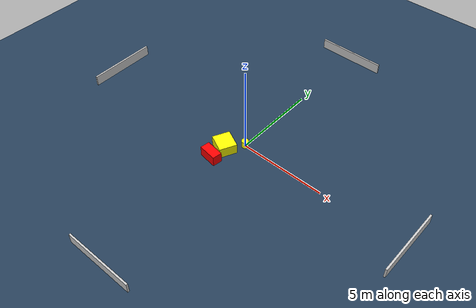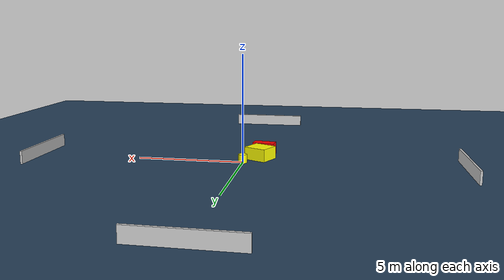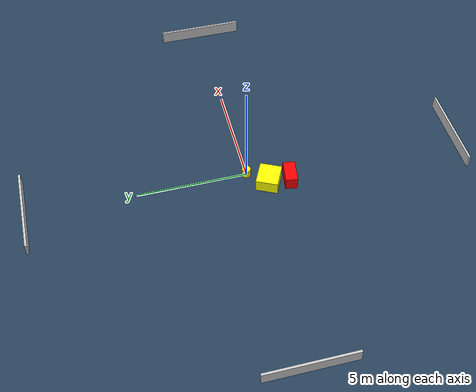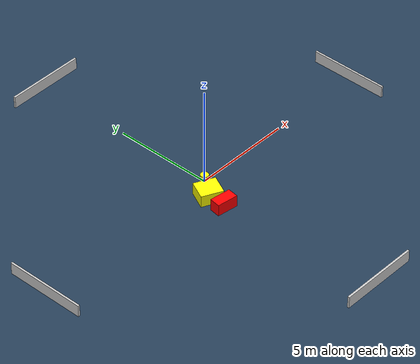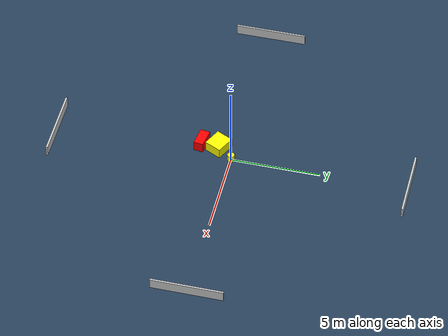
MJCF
<?xml version="1.0" ?>
<mujoco model="generated_environment">
  <option timestep="0.01" integrator="RK4" cone="elliptic"/>
  <default>
    <geom density="1"/>
  </default>
  <asset>
    <texture builtin="gradient" height="3072" name="skybox" rgb1="0.3 0.5 0.7" rgb2="0 0 0" type="skybox" width="512"/>
    <texture builtin="checker" height="300" name="groundplane" rgb1="0.2 0.3 0.4" rgb2="0.1 0.2 0.3" type="2d" width="300"/>
    <material name="groundplane" reflectance="0.2" texrepeat="5 5" texture="groundplane"/>
  </asset>
  <worldbody>
    <light dir="0 0 -1" directional="true" pos="0 0 1.5"/>
    <geom condim="3" friction="0.5 0.005 0.001" material="groundplane" name="floor" pos="0 0 0" size="0 0 0.05" type="plane"/>
    <body name="walls">
      <geom name="wall_1" condim="4" pos="-10.0 0.0 0.3" rgba="0.800000011920929 0.800000011920929 0.800000011920929 1.0" size="0.05 2.0 0.3" type="box"/>
      <geom name="wall_2" condim="4" pos="10.0 0.0 0.3" rgba="0.800000011920929 0.800000011920929 0.800000011920929 1.0" size="0.05 2.0 0.3" type="box"/>
      <geom name="wall_3" condim="4" pos="0.0 -10.0 0.3" rgba="0.800000011920929 0.800000011920929 0.800000011920929 1.0" size="2.0 0.05 0.3" type="box"/>
      <geom name="wall_4" condim="4" pos="0.0 10.0 0.3" rgba="0.800000011920929 0.800000011920929 0.800000011920929 1.0" size="2.0 0.05 0.3" type="box"/>
    </body>
    <body name="robot">
      <joint name="joint_x" type="slide" pos="0 0 0" axis="1 0 0"/>
      <joint name="joint_y" type="slide" pos="0 0 0" axis="0 1 0"/>
      <geom name="robot" type="cylinder" pos="0.0 0.0 0.2" size="0.2 0.2 0.0" mass="5.0" friction="1.0 0.005 0.0001" condim="4" rgba="1.0 1.0 0.0 1.0"/>
    </body>
    <body name="obstacle_1_movable">
      <geom name="obstacle_1_movable" condim="4" pos="-0.7024798740637628 -0.8644065651947518 0.3" euler="0 0 244.064730319336" friction="0.0 0.005 0.001" rgba="1.0 1.0 0.0 1.0" size="0.49935993813250934 0.5487348500033484 0.3" type="box" mass="0.1"/>
      <joint type="free"/>
    </body>
    <body name="obstacle_2_static">
      <geom name="obstacle_2_static" condim="4" pos="-0.7679046563428099 -1.8414815002096292 0.3" euler="0 0 261.7213947669983" friction="0.0 0.005 0.001" rgba="1.0 0.0 0.0 1.0" size="0.2721943324716525 0.5280943668606664 0.3" type="box"/>
    </body>
  </worldbody>
  <actuator>
    <motor name="actuator_x" joint="joint_x" gear="1" ctrlrange="-1 1"/>
    <motor name="actuator_y" joint="joint_y" gear="1" ctrlrange="-1 1"/>
  </actuator>
</mujoco>
